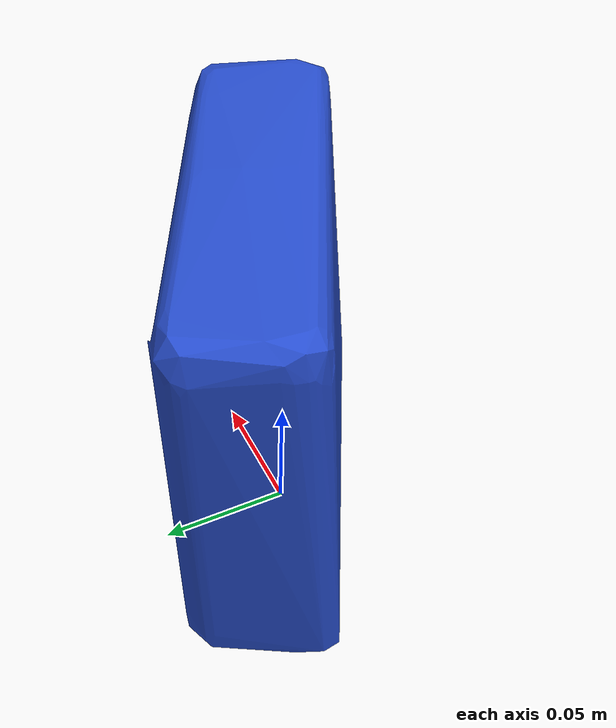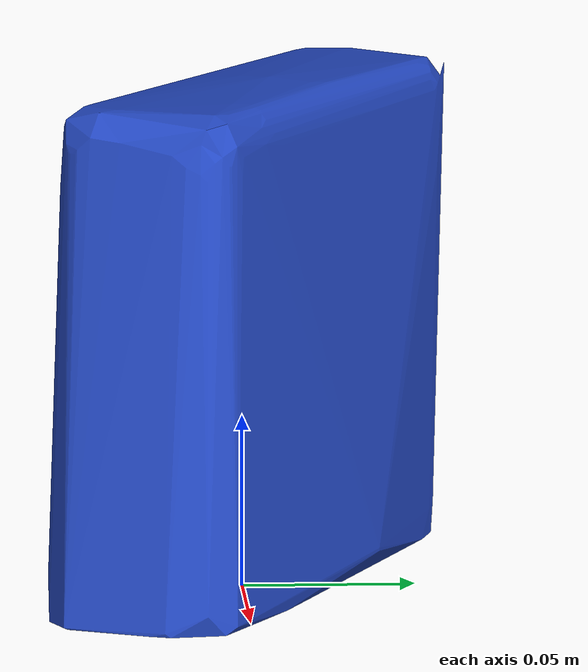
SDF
<?xml version='1.0'?>
<sdf version="1.4">
  <model name="nutrigrain_harvest_blueberry_bliss">
    <static>false</static>
    <link name="link">
      <inertial>
        <pose>0.012939695896837237 0.002739409762473551 0.07481343524311536 -1.5563673957329998 0.03699770513985778 1.1017726458742987</pose>
        <mass>0.1339093160797401</mass>
        <inertia>
          <ixx>0.0005280375972533162</ixx>
          <ixy>-3.783752530288604e-20</ixy>
          <ixz>-8.764549604028535e-21</ixz>
          <iyy>0.0003384198608180212</iyy>
          <iyz>2.6807174432691894e-21</iyz>
          <izz>0.0002594291848749345</izz>
        </inertia>
      </inertial>
      <collision name="collision">
        <geometry>
          <mesh>
            <!-- Use a downsampled mesh for collisions -->
            <uri>model:///nutrigrain_harvest_blueberry_bliss/nutrigrain_harvest_blueberry_bliss_250_collision.obj</uri>
	        </mesh>
        </geometry>
        <surface>
      </surface>
      </collision>
      <visual name="visual">
        <geometry>
          <mesh>
            <uri>model:///nutrigrain_harvest_blueberry_bliss/optimized_tsdf_texture_mapped_mesh.obj</uri>
	        </mesh>
        </geometry>
        <material>
          <script>
            <uri>model:///nutrigrain_harvest_blueberry_bliss/nutrigrain_harvest_blueberry_bliss.material</uri>
            <name>nutrigrain_harvest_blueberry_bliss</name>
          </script>
        </material>
      </visual>
    </link>
  </model>
</sdf>
